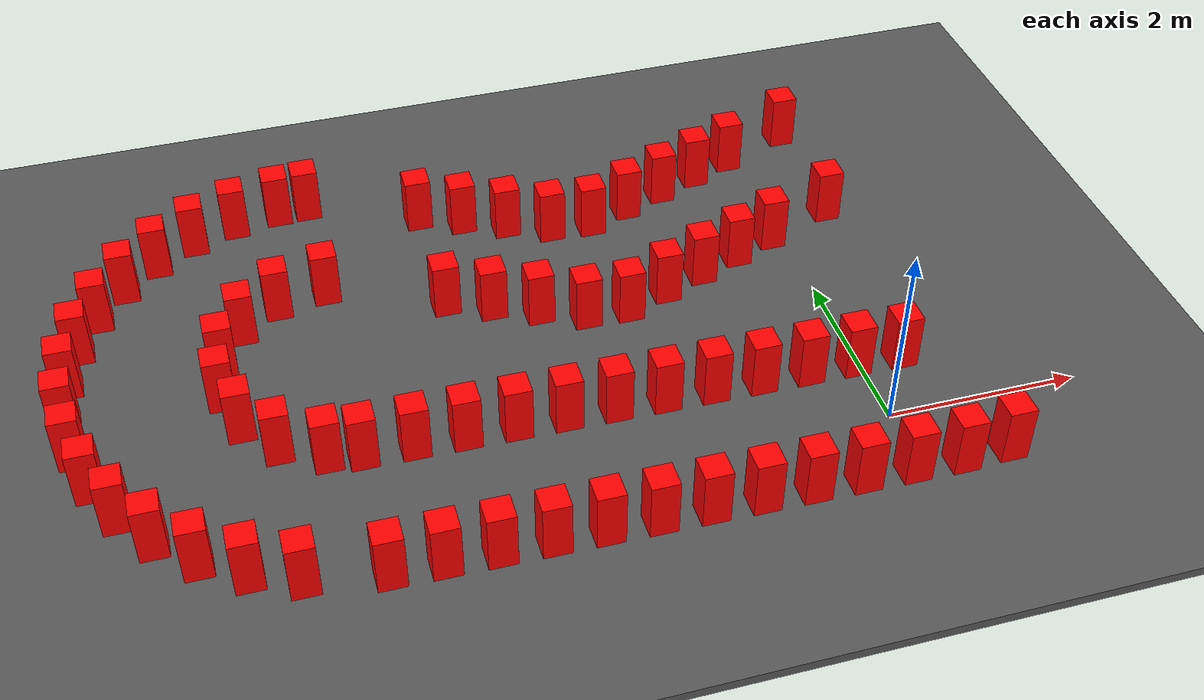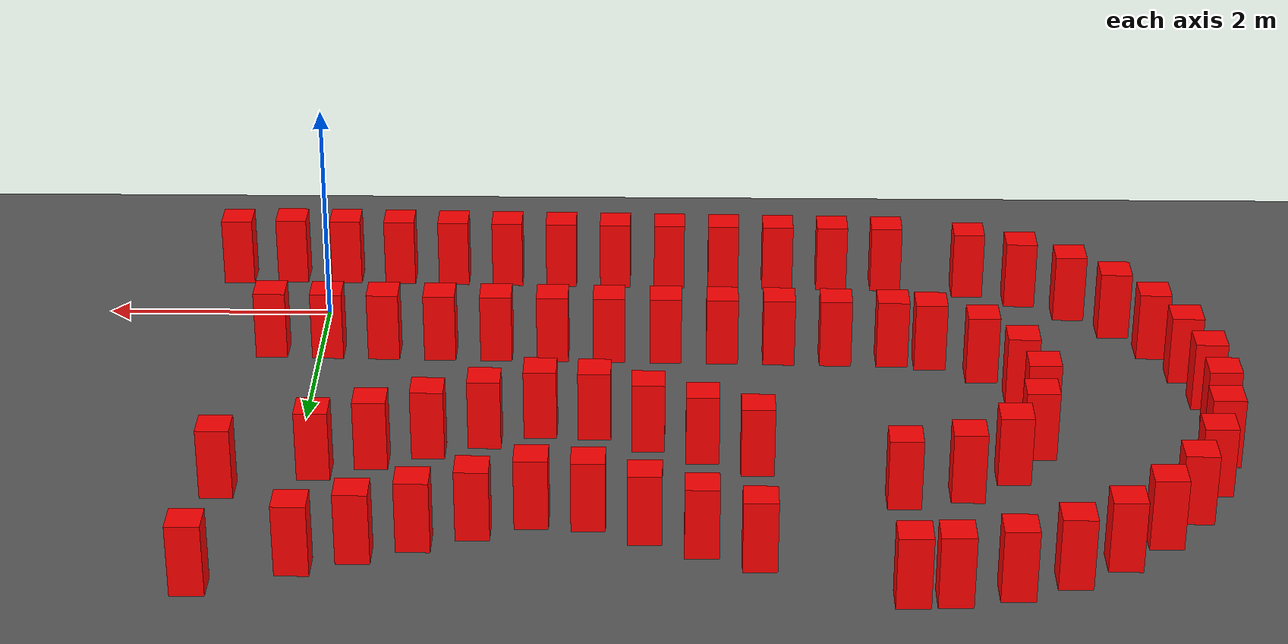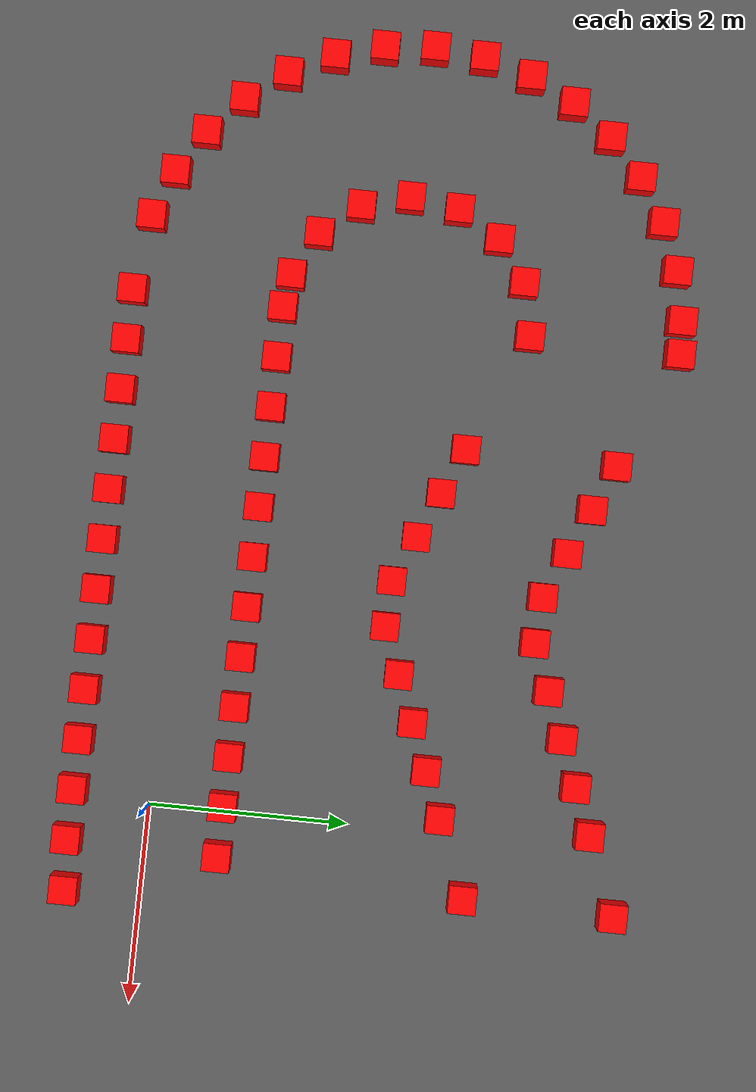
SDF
<sdf version="1.6">
 <world name="prototype">
  <model name="ground">
   <static>true</static>
   <pose>0 0 -0.05 0 0 0</pose>
   <link name="body">
    <visual name="visual">
     <geometry><box><size>200 200 0.1</size></box></geometry>
     <material><ambient>.35 .35 .35 1</ambient><diffuse>.35 .35 .35 1</diffuse></material>
    </visual>
    <collision name="collision"><geometry><box><size>200 200 0.1</size></box></geometry></collision>
   </link>
  </model>
  <model name="cone_proxy_c0">
   <static>true</static>
   <pose>-5.1255 -0.6646 0.315 0 0 0</pose>
   <link name="body">
    <visual name="visual">
     <geometry><box><size>.28 .28 .63</size></box></geometry>
     <material><ambient>1 0 0 1</ambient><diffuse>1 0 0 1</diffuse></material>
    </visual>
    <collision name="collision"><geometry><box><size>.28 .28 .63</size></box></geometry></collision>
   </link>
  </model>
  <model name="cone_proxy_c1">
   <static>true</static>
   <pose>-4.6230 -0.6737 0.315 0 0 0</pose>
   <link name="body">
    <visual name="visual">
     <geometry><box><size>.28 .28 .63</size></box></geometry>
     <material><ambient>1 0 0 1</ambient><diffuse>1 0 0 1</diffuse></material>
    </visual>
    <collision name="collision"><geometry><box><size>.28 .28 .63</size></box></geometry></collision>
   </link>
  </model>
  <model name="cone_proxy_c2">
   <static>true</static>
   <pose>-4.1205 -0.6827 0.315 0 0 0</pose>
   <link name="body">
    <visual name="visual">
     <geometry><box><size>.28 .28 .63</size></box></geometry>
     <material><ambient>1 0 0 1</ambient><diffuse>1 0 0 1</diffuse></material>
    </visual>
    <collision name="collision"><geometry><box><size>.28 .28 .63</size></box></geometry></collision>
   </link>
  </model>
  <model name="cone_proxy_c3">
   <static>true</static>
   <pose>-3.6181 -0.6918 0.315 0 0 0</pose>
   <link name="body">
    <visual name="visual">
     <geometry><box><size>.28 .28 .63</size></box></geometry>
     <material><ambient>1 0 0 1</ambient><diffuse>1 0 0 1</diffuse></material>
    </visual>
    <collision name="collision"><geometry><box><size>.28 .28 .63</size></box></geometry></collision>
   </link>
  </model>
  <model name="cone_proxy_c4">
   <static>true</static>
   <pose>-3.1156 -0.7009 0.315 0 0 0</pose>
   <link name="body">
    <visual name="visual">
     <geometry><box><size>.28 .28 .63</size></box></geometry>
     <material><ambient>1 0 0 1</ambient><diffuse>1 0 0 1</diffuse></material>
    </visual>
    <collision name="collision"><geometry><box><size>.28 .28 .63</size></box></geometry></collision>
   </link>
  </model>
  <model name="cone_proxy_c5">
   <static>true</static>
   <pose>-2.6132 -0.7100 0.315 0 0 0</pose>
   <link name="body">
    <visual name="visual">
     <geometry><box><size>.28 .28 .63</size></box></geometry>
     <material><ambient>1 0 0 1</ambient><diffuse>1 0 0 1</diffuse></material>
    </visual>
    <collision name="collision"><geometry><box><size>.28 .28 .63</size></box></geometry></collision>
   </link>
  </model>
  <model name="cone_proxy_c6">
   <static>true</static>
   <pose>-2.1108 -0.7191 0.315 0 0 0</pose>
   <link name="body">
    <visual name="visual">
     <geometry><box><size>.28 .28 .63</size></box></geometry>
     <material><ambient>1 0 0 1</ambient><diffuse>1 0 0 1</diffuse></material>
    </visual>
    <collision name="collision"><geometry><box><size>.28 .28 .63</size></box></geometry></collision>
   </link>
  </model>
  <model name="cone_proxy_c7">
   <static>true</static>
   <pose>-1.6083 -0.7282 0.315 0 0 0</pose>
   <link name="body">
    <visual name="visual">
     <geometry><box><size>.28 .28 .63</size></box></geometry>
     <material><ambient>1 0 0 1</ambient><diffuse>1 0 0 1</diffuse></material>
    </visual>
    <collision name="collision"><geometry><box><size>.28 .28 .63</size></box></geometry></collision>
   </link>
  </model>
  <model name="cone_proxy_c8">
   <static>true</static>
   <pose>-1.1058 -0.7373 0.315 0 0 0</pose>
   <link name="body">
    <visual name="visual">
     <geometry><box><size>.28 .28 .63</size></box></geometry>
     <material><ambient>1 0 0 1</ambient><diffuse>1 0 0 1</diffuse></material>
    </visual>
    <collision name="collision"><geometry><box><size>.28 .28 .63</size></box></geometry></collision>
   </link>
  </model>
  <model name="cone_proxy_c9">
   <static>true</static>
   <pose>-0.6034 -0.7464 0.315 0 0 0</pose>
   <link name="body">
    <visual name="visual">
     <geometry><box><size>.28 .28 .63</size></box></geometry>
     <material><ambient>1 0 0 1</ambient><diffuse>1 0 0 1</diffuse></material>
    </visual>
    <collision name="collision"><geometry><box><size>.28 .28 .63</size></box></geometry></collision>
   </link>
  </model>
  <model name="cone_proxy_c10">
   <static>true</static>
   <pose>-0.1010 -0.7555 0.315 0 0 0</pose>
   <link name="body">
    <visual name="visual">
     <geometry><box><size>.28 .28 .63</size></box></geometry>
     <material><ambient>1 0 0 1</ambient><diffuse>1 0 0 1</diffuse></material>
    </visual>
    <collision name="collision"><geometry><box><size>.28 .28 .63</size></box></geometry></collision>
   </link>
  </model>
  <model name="cone_proxy_c11">
   <static>true</static>
   <pose>0.4015 -0.7646 0.315 0 0 0</pose>
   <link name="body">
    <visual name="visual">
     <geometry><box><size>.28 .28 .63</size></box></geometry>
     <material><ambient>1 0 0 1</ambient><diffuse>1 0 0 1</diffuse></material>
    </visual>
    <collision name="collision"><geometry><box><size>.28 .28 .63</size></box></geometry></collision>
   </link>
  </model>
  <model name="cone_proxy_c12">
   <static>true</static>
   <pose>0.9026 -0.7414 0.315 0 0 0</pose>
   <link name="body">
    <visual name="visual">
     <geometry><box><size>.28 .28 .63</size></box></geometry>
     <material><ambient>1 0 0 1</ambient><diffuse>1 0 0 1</diffuse></material>
    </visual>
    <collision name="collision"><geometry><box><size>.28 .28 .63</size></box></geometry></collision>
   </link>
  </model>
  <model name="cone_proxy_c52">
   <static>true</static>
   <pose>0.6265 4.7287 0.315 0 0 0</pose>
   <link name="body">
    <visual name="visual">
     <geometry><box><size>.28 .28 .63</size></box></geometry>
     <material><ambient>1 0 0 1</ambient><diffuse>1 0 0 1</diffuse></material>
    </visual>
    <collision name="collision"><geometry><box><size>.28 .28 .63</size></box></geometry></collision>
   </link>
  </model>
  <model name="cone_proxy_c53">
   <static>true</static>
   <pose>-5.0260 4.8309 0.315 0 0 0</pose>
   <link name="body">
    <visual name="visual">
     <geometry><box><size>.28 .28 .63</size></box></geometry>
     <material><ambient>1 0 0 1</ambient><diffuse>1 0 0 1</diffuse></material>
    </visual>
    <collision name="collision"><geometry><box><size>.28 .28 .63</size></box></geometry></collision>
   </link>
  </model>
  <model name="cone_proxy_c54">
   <static>true</static>
   <pose>-5.3569 4.8156 0.315 0 0 0</pose>
   <link name="body">
    <visual name="visual">
     <geometry><box><size>.28 .28 .63</size></box></geometry>
     <material><ambient>1 0 0 1</ambient><diffuse>1 0 0 1</diffuse></material>
    </visual>
    <collision name="collision"><geometry><box><size>.28 .28 .63</size></box></geometry></collision>
   </link>
  </model>
  <model name="cone_proxy_c55">
   <static>true</static>
   <pose>-5.8491 4.7188 0.315 0 0 0</pose>
   <link name="body">
    <visual name="visual">
     <geometry><box><size>.28 .28 .63</size></box></geometry>
     <material><ambient>1 0 0 1</ambient><diffuse>1 0 0 1</diffuse></material>
    </visual>
    <collision name="collision"><geometry><box><size>.28 .28 .63</size></box></geometry></collision>
   </link>
  </model>
  <model name="cone_proxy_c56">
   <static>true</static>
   <pose>-6.3161 4.5353 0.315 0 0 0</pose>
   <link name="body">
    <visual name="visual">
     <geometry><box><size>.28 .28 .63</size></box></geometry>
     <material><ambient>1 0 0 1</ambient><diffuse>1 0 0 1</diffuse></material>
    </visual>
    <collision name="collision"><geometry><box><size>.28 .28 .63</size></box></geometry></collision>
   </link>
  </model>
  <model name="cone_proxy_c57">
   <static>true</static>
   <pose>-6.7405 4.2677 0.315 0 0 0</pose>
   <link name="body">
    <visual name="visual">
     <geometry><box><size>.28 .28 .63</size></box></geometry>
     <material><ambient>1 0 0 1</ambient><diffuse>1 0 0 1</diffuse></material>
    </visual>
    <collision name="collision"><geometry><box><size>.28 .28 .63</size></box></geometry></collision>
   </link>
  </model>
  <model name="cone_proxy_c58">
   <static>true</static>
   <pose>-7.1105 3.9288 0.315 0 0 0</pose>
   <link name="body">
    <visual name="visual">
     <geometry><box><size>.28 .28 .63</size></box></geometry>
     <material><ambient>1 0 0 1</ambient><diffuse>1 0 0 1</diffuse></material>
    </visual>
    <collision name="collision"><geometry><box><size>.28 .28 .63</size></box></geometry></collision>
   </link>
  </model>
  <model name="cone_proxy_c59">
   <static>true</static>
   <pose>-7.4123 3.5280 0.315 0 0 0</pose>
   <link name="body">
    <visual name="visual">
     <geometry><box><size>.28 .28 .63</size></box></geometry>
     <material><ambient>1 0 0 1</ambient><diffuse>1 0 0 1</diffuse></material>
    </visual>
    <collision name="collision"><geometry><box><size>.28 .28 .63</size></box></geometry></collision>
   </link>
  </model>
  <model name="cone_proxy_c60">
   <static>true</static>
   <pose>-7.6355 3.0788 0.315 0 0 0</pose>
   <link name="body">
    <visual name="visual">
     <geometry><box><size>.28 .28 .63</size></box></geometry>
     <material><ambient>1 0 0 1</ambient><diffuse>1 0 0 1</diffuse></material>
    </visual>
    <collision name="collision"><geometry><box><size>.28 .28 .63</size></box></geometry></collision>
   </link>
  </model>
  <model name="cone_proxy_c61">
   <static>true</static>
   <pose>-7.7751 2.5968 0.315 0 0 0</pose>
   <link name="body">
    <visual name="visual">
     <geometry><box><size>.28 .28 .63</size></box></geometry>
     <material><ambient>1 0 0 1</ambient><diffuse>1 0 0 1</diffuse></material>
    </visual>
    <collision name="collision"><geometry><box><size>.28 .28 .63</size></box></geometry></collision>
   </link>
  </model>
  <model name="cone_proxy_c62">
   <static>true</static>
   <pose>-7.8224 2.0973 0.315 0 0 0</pose>
   <link name="body">
    <visual name="visual">
     <geometry><box><size>.28 .28 .63</size></box></geometry>
     <material><ambient>1 0 0 1</ambient><diffuse>1 0 0 1</diffuse></material>
    </visual>
    <collision name="collision"><geometry><box><size>.28 .28 .63</size></box></geometry></collision>
   </link>
  </model>
  <model name="cone_proxy_c63">
   <static>true</static>
   <pose>-7.7792 1.5975 0.315 0 0 0</pose>
   <link name="body">
    <visual name="visual">
     <geometry><box><size>.28 .28 .63</size></box></geometry>
     <material><ambient>1 0 0 1</ambient><diffuse>1 0 0 1</diffuse></material>
    </visual>
    <collision name="collision"><geometry><box><size>.28 .28 .63</size></box></geometry></collision>
   </link>
  </model>
  <model name="cone_proxy_c64">
   <static>true</static>
   <pose>-7.6467 1.1135 0.315 0 0 0</pose>
   <link name="body">
    <visual name="visual">
     <geometry><box><size>.28 .28 .63</size></box></geometry>
     <material><ambient>1 0 0 1</ambient><diffuse>1 0 0 1</diffuse></material>
    </visual>
    <collision name="collision"><geometry><box><size>.28 .28 .63</size></box></geometry></collision>
   </link>
  </model>
  <model name="cone_proxy_c65">
   <static>true</static>
   <pose>-7.4264 0.6627 0.315 0 0 0</pose>
   <link name="body">
    <visual name="visual">
     <geometry><box><size>.28 .28 .63</size></box></geometry>
     <material><ambient>1 0 0 1</ambient><diffuse>1 0 0 1</diffuse></material>
    </visual>
    <collision name="collision"><geometry><box><size>.28 .28 .63</size></box></geometry></collision>
   </link>
  </model>
  <model name="cone_proxy_c66">
   <static>true</static>
   <pose>-7.1294 0.2583 0.315 0 0 0</pose>
   <link name="body">
    <visual name="visual">
     <geometry><box><size>.28 .28 .63</size></box></geometry>
     <material><ambient>1 0 0 1</ambient><diffuse>1 0 0 1</diffuse></material>
    </visual>
    <collision name="collision"><geometry><box><size>.28 .28 .63</size></box></geometry></collision>
   </link>
  </model>
  <model name="cone_proxy_c67">
   <static>true</static>
   <pose>-6.7631 -0.0845 0.315 0 0 0</pose>
   <link name="body">
    <visual name="visual">
     <geometry><box><size>.28 .28 .63</size></box></geometry>
     <material><ambient>1 0 0 1</ambient><diffuse>1 0 0 1</diffuse></material>
    </visual>
    <collision name="collision"><geometry><box><size>.28 .28 .63</size></box></geometry></collision>
   </link>
  </model>
  <model name="cone_proxy_c68">
   <static>true</static>
   <pose>-6.3405 -0.3548 0.315 0 0 0</pose>
   <link name="body">
    <visual name="visual">
     <geometry><box><size>.28 .28 .63</size></box></geometry>
     <material><ambient>1 0 0 1</ambient><diffuse>1 0 0 1</diffuse></material>
    </visual>
    <collision name="collision"><geometry><box><size>.28 .28 .63</size></box></geometry></collision>
   </link>
  </model>
  <model name="cone_proxy_c69">
   <static>true</static>
   <pose>-5.8764 -0.5457 0.315 0 0 0</pose>
   <link name="body">
    <visual name="visual">
     <geometry><box><size>.28 .28 .63</size></box></geometry>
     <material><ambient>1 0 0 1</ambient><diffuse>1 0 0 1</diffuse></material>
    </visual>
    <collision name="collision"><geometry><box><size>.28 .28 .63</size></box></geometry></collision>
   </link>
  </model>
  <model name="cone_proxy_c70">
   <static>true</static>
   <pose>-5.0982 0.8428 0.315 0 0 0</pose>
   <link name="body">
    <visual name="visual">
     <geometry><box><size>.28 .28 .63</size></box></geometry>
     <material><ambient>1 0 0 1</ambient><diffuse>1 0 0 1</diffuse></material>
    </visual>
    <collision name="collision"><geometry><box><size>.28 .28 .63</size></box></geometry></collision>
   </link>
  </model>
  <model name="cone_proxy_c71">
   <static>true</static>
   <pose>-4.5957 0.8337 0.315 0 0 0</pose>
   <link name="body">
    <visual name="visual">
     <geometry><box><size>.28 .28 .63</size></box></geometry>
     <material><ambient>1 0 0 1</ambient><diffuse>1 0 0 1</diffuse></material>
    </visual>
    <collision name="collision"><geometry><box><size>.28 .28 .63</size></box></geometry></collision>
   </link>
  </model>
  <model name="cone_proxy_c72">
   <static>true</static>
   <pose>-4.0933 0.8246 0.315 0 0 0</pose>
   <link name="body">
    <visual name="visual">
     <geometry><box><size>.28 .28 .63</size></box></geometry>
     <material><ambient>1 0 0 1</ambient><diffuse>1 0 0 1</diffuse></material>
    </visual>
    <collision name="collision"><geometry><box><size>.28 .28 .63</size></box></geometry></collision>
   </link>
  </model>
  <model name="cone_proxy_c73">
   <static>true</static>
   <pose>-3.5908 0.8155 0.315 0 0 0</pose>
   <link name="body">
    <visual name="visual">
     <geometry><box><size>.28 .28 .63</size></box></geometry>
     <material><ambient>1 0 0 1</ambient><diffuse>1 0 0 1</diffuse></material>
    </visual>
    <collision name="collision"><geometry><box><size>.28 .28 .63</size></box></geometry></collision>
   </link>
  </model>
  <model name="cone_proxy_c74">
   <static>true</static>
   <pose>-3.0883 0.8064 0.315 0 0 0</pose>
   <link name="body">
    <visual name="visual">
     <geometry><box><size>.28 .28 .63</size></box></geometry>
     <material><ambient>1 0 0 1</ambient><diffuse>1 0 0 1</diffuse></material>
    </visual>
    <collision name="collision"><geometry><box><size>.28 .28 .63</size></box></geometry></collision>
   </link>
  </model>
  <model name="cone_proxy_c75">
   <static>true</static>
   <pose>-2.5859 0.7973 0.315 0 0 0</pose>
   <link name="body">
    <visual name="visual">
     <geometry><box><size>.28 .28 .63</size></box></geometry>
     <material><ambient>1 0 0 1</ambient><diffuse>1 0 0 1</diffuse></material>
    </visual>
    <collision name="collision"><geometry><box><size>.28 .28 .63</size></box></geometry></collision>
   </link>
  </model>
  <model name="cone_proxy_c76">
   <static>true</static>
   <pose>-2.0835 0.7882 0.315 0 0 0</pose>
   <link name="body">
    <visual name="visual">
     <geometry><box><size>.28 .28 .63</size></box></geometry>
     <material><ambient>1 0 0 1</ambient><diffuse>1 0 0 1</diffuse></material>
    </visual>
    <collision name="collision"><geometry><box><size>.28 .28 .63</size></box></geometry></collision>
   </link>
  </model>
  <model name="cone_proxy_c77">
   <static>true</static>
   <pose>-1.5811 0.7792 0.315 0 0 0</pose>
   <link name="body">
    <visual name="visual">
     <geometry><box><size>.28 .28 .63</size></box></geometry>
     <material><ambient>1 0 0 1</ambient><diffuse>1 0 0 1</diffuse></material>
    </visual>
    <collision name="collision"><geometry><box><size>.28 .28 .63</size></box></geometry></collision>
   </link>
  </model>
  <model name="cone_proxy_c78">
   <static>true</static>
   <pose>-1.0786 0.7701 0.315 0 0 0</pose>
   <link name="body">
    <visual name="visual">
     <geometry><box><size>.28 .28 .63</size></box></geometry>
     <material><ambient>1 0 0 1</ambient><diffuse>1 0 0 1</diffuse></material>
    </visual>
    <collision name="collision"><geometry><box><size>.28 .28 .63</size></box></geometry></collision>
   </link>
  </model>
  <model name="cone_proxy_c79">
   <static>true</static>
   <pose>-0.5761 0.7610 0.315 0 0 0</pose>
   <link name="body">
    <visual name="visual">
     <geometry><box><size>.28 .28 .63</size></box></geometry>
     <material><ambient>1 0 0 1</ambient><diffuse>1 0 0 1</diffuse></material>
    </visual>
    <collision name="collision"><geometry><box><size>.28 .28 .63</size></box></geometry></collision>
   </link>
  </model>
  <model name="cone_proxy_c80">
   <static>true</static>
   <pose>-0.0737 0.7519 0.315 0 0 0</pose>
   <link name="body">
    <visual name="visual">
     <geometry><box><size>.28 .28 .63</size></box></geometry>
     <material><ambient>1 0 0 1</ambient><diffuse>1 0 0 1</diffuse></material>
    </visual>
    <collision name="collision"><geometry><box><size>.28 .28 .63</size></box></geometry></collision>
   </link>
  </model>
  <model name="cone_proxy_c81">
   <static>true</static>
   <pose>0.4288 0.7428 0.315 0 0 0</pose>
   <link name="body">
    <visual name="visual">
     <geometry><box><size>.28 .28 .63</size></box></geometry>
     <material><ambient>1 0 0 1</ambient><diffuse>1 0 0 1</diffuse></material>
    </visual>
    <collision name="collision"><geometry><box><size>.28 .28 .63</size></box></geometry></collision>
   </link>
  </model>
  <model name="cone_proxy_c113">
   <static>true</static>
   <pose>0.5993 3.2213 0.315 0 0 0</pose>
   <link name="body">
    <visual name="visual">
     <geometry><box><size>.28 .28 .63</size></box></geometry>
     <material><ambient>1 0 0 1</ambient><diffuse>1 0 0 1</diffuse></material>
    </visual>
    <collision name="collision"><geometry><box><size>.28 .28 .63</size></box></geometry></collision>
   </link>
  </model>
  <model name="cone_proxy_c114">
   <static>true</static>
   <pose>-5.0533 3.3236 0.315 0 0 0</pose>
   <link name="body">
    <visual name="visual">
     <geometry><box><size>.28 .28 .63</size></box></geometry>
     <material><ambient>1 0 0 1</ambient><diffuse>1 0 0 1</diffuse></material>
    </visual>
    <collision name="collision"><geometry><box><size>.28 .28 .63</size></box></geometry></collision>
   </link>
  </model>
  <model name="cone_proxy_c115">
   <static>true</static>
   <pose>-5.5819 3.2152 0.315 0 0 0</pose>
   <link name="body">
    <visual name="visual">
     <geometry><box><size>.28 .28 .63</size></box></geometry>
     <material><ambient>1 0 0 1</ambient><diffuse>1 0 0 1</diffuse></material>
    </visual>
    <collision name="collision"><geometry><box><size>.28 .28 .63</size></box></geometry></collision>
   </link>
  </model>
  <model name="cone_proxy_c116">
   <static>true</static>
   <pose>-5.9873 2.9243 0.315 0 0 0</pose>
   <link name="body">
    <visual name="visual">
     <geometry><box><size>.28 .28 .63</size></box></geometry>
     <material><ambient>1 0 0 1</ambient><diffuse>1 0 0 1</diffuse></material>
    </visual>
    <collision name="collision"><geometry><box><size>.28 .28 .63</size></box></geometry></collision>
   </link>
  </model>
  <model name="cone_proxy_c117">
   <static>true</static>
   <pose>-6.2450 2.4969 0.315 0 0 0</pose>
   <link name="body">
    <visual name="visual">
     <geometry><box><size>.28 .28 .63</size></box></geometry>
     <material><ambient>1 0 0 1</ambient><diffuse>1 0 0 1</diffuse></material>
    </visual>
    <collision name="collision"><geometry><box><size>.28 .28 .63</size></box></geometry></collision>
   </link>
  </model>
  <model name="cone_proxy_c118">
   <static>true</static>
   <pose>-6.3131 2.0026 0.315 0 0 0</pose>
   <link name="body">
    <visual name="visual">
     <geometry><box><size>.28 .28 .63</size></box></geometry>
     <material><ambient>1 0 0 1</ambient><diffuse>1 0 0 1</diffuse></material>
    </visual>
    <collision name="collision"><geometry><box><size>.28 .28 .63</size></box></geometry></collision>
   </link>
  </model>
  <model name="cone_proxy_c119">
   <static>true</static>
   <pose>-6.1810 1.5215 0.315 0 0 0</pose>
   <link name="body">
    <visual name="visual">
     <geometry><box><size>.28 .28 .63</size></box></geometry>
     <material><ambient>1 0 0 1</ambient><diffuse>1 0 0 1</diffuse></material>
    </visual>
    <collision name="collision"><geometry><box><size>.28 .28 .63</size></box></geometry></collision>
   </link>
  </model>
  <model name="cone_proxy_c120">
   <static>true</static>
   <pose>-5.8702 1.1312 0.315 0 0 0</pose>
   <link name="body">
    <visual name="visual">
     <geometry><box><size>.28 .28 .63</size></box></geometry>
     <material><ambient>1 0 0 1</ambient><diffuse>1 0 0 1</diffuse></material>
    </visual>
    <collision name="collision"><geometry><box><size>.28 .28 .63</size></box></geometry></collision>
   </link>
  </model>
  <model name="cone_proxy_c121">
   <static>true</static>
   <pose>-5.4308 0.8947 0.315 0 0 0</pose>
   <link name="body">
    <visual name="visual">
     <geometry><box><size>.28 .28 .63</size></box></geometry>
     <material><ambient>1 0 0 1</ambient><diffuse>1 0 0 1</diffuse></material>
    </visual>
    <collision name="collision"><geometry><box><size>.28 .28 .63</size></box></geometry></collision>
   </link>
  </model>
  <model name="cone_proxy_c122">
   <static>true</static>
   <pose>-0.1560 4.4191 0.315 0 0 0</pose>
   <link name="body">
    <visual name="visual">
     <geometry><box><size>.28 .28 .63</size></box></geometry>
     <material><ambient>1 0 0 1</ambient><diffuse>1 0 0 1</diffuse></material>
    </visual>
    <collision name="collision"><geometry><box><size>.28 .28 .63</size></box></geometry></collision>
   </link>
  </model>
  <model name="cone_proxy_c123">
   <static>true</static>
   <pose>-0.6209 4.2352 0.315 0 0 0</pose>
   <link name="body">
    <visual name="visual">
     <geometry><box><size>.28 .28 .63</size></box></geometry>
     <material><ambient>1 0 0 1</ambient><diffuse>1 0 0 1</diffuse></material>
    </visual>
    <collision name="collision"><geometry><box><size>.28 .28 .63</size></box></geometry></collision>
   </link>
  </model>
  <model name="cone_proxy_c124">
   <static>true</static>
   <pose>-1.0858 4.0512 0.315 0 0 0</pose>
   <link name="body">
    <visual name="visual">
     <geometry><box><size>.28 .28 .63</size></box></geometry>
     <material><ambient>1 0 0 1</ambient><diffuse>1 0 0 1</diffuse></material>
    </visual>
    <collision name="collision"><geometry><box><size>.28 .28 .63</size></box></geometry></collision>
   </link>
  </model>
  <model name="cone_proxy_c125">
   <static>true</static>
   <pose>-1.5508 3.8674 0.315 0 0 0</pose>
   <link name="body">
    <visual name="visual">
     <geometry><box><size>.28 .28 .63</size></box></geometry>
     <material><ambient>1 0 0 1</ambient><diffuse>1 0 0 1</diffuse></material>
    </visual>
    <collision name="collision"><geometry><box><size>.28 .28 .63</size></box></geometry></collision>
   </link>
  </model>
  <model name="cone_proxy_c126">
   <static>true</static>
   <pose>-2.0158 3.6834 0.315 0 0 0</pose>
   <link name="body">
    <visual name="visual">
     <geometry><box><size>.28 .28 .63</size></box></geometry>
     <material><ambient>1 0 0 1</ambient><diffuse>1 0 0 1</diffuse></material>
    </visual>
    <collision name="collision"><geometry><box><size>.28 .28 .63</size></box></geometry></collision>
   </link>
  </model>
  <model name="cone_proxy_c127">
   <static>true</static>
   <pose>-2.4768 3.7143 0.315 0 0 0</pose>
   <link name="body">
    <visual name="visual">
     <geometry><box><size>.28 .28 .63</size></box></geometry>
     <material><ambient>1 0 0 1</ambient><diffuse>1 0 0 1</diffuse></material>
    </visual>
    <collision name="collision"><geometry><box><size>.28 .28 .63</size></box></geometry></collision>
   </link>
  </model>
  <model name="cone_proxy_c128">
   <static>true</static>
   <pose>-2.9348 3.9149 0.315 0 0 0</pose>
   <link name="body">
    <visual name="visual">
     <geometry><box><size>.28 .28 .63</size></box></geometry>
     <material><ambient>1 0 0 1</ambient><diffuse>1 0 0 1</diffuse></material>
    </visual>
    <collision name="collision"><geometry><box><size>.28 .28 .63</size></box></geometry></collision>
   </link>
  </model>
  <model name="cone_proxy_c129">
   <static>true</static>
   <pose>-3.3928 4.1155 0.315 0 0 0</pose>
   <link name="body">
    <visual name="visual">
     <geometry><box><size>.28 .28 .63</size></box></geometry>
     <material><ambient>1 0 0 1</ambient><diffuse>1 0 0 1</diffuse></material>
    </visual>
    <collision name="collision"><geometry><box><size>.28 .28 .63</size></box></geometry></collision>
   </link>
  </model>
  <model name="cone_proxy_c130">
   <static>true</static>
   <pose>-3.8508 4.3161 0.315 0 0 0</pose>
   <link name="body">
    <visual name="visual">
     <geometry><box><size>.28 .28 .63</size></box></geometry>
     <material><ambient>1 0 0 1</ambient><diffuse>1 0 0 1</diffuse></material>
    </visual>
    <collision name="collision"><geometry><box><size>.28 .28 .63</size></box></geometry></collision>
   </link>
  </model>
  <model name="cone_proxy_c131">
   <static>true</static>
   <pose>-0.1696 2.9172 0.315 0 0 0</pose>
   <link name="body">
    <visual name="visual">
     <geometry><box><size>.28 .28 .63</size></box></geometry>
     <material><ambient>1 0 0 1</ambient><diffuse>1 0 0 1</diffuse></material>
    </visual>
    <collision name="collision"><geometry><box><size>.28 .28 .63</size></box></geometry></collision>
   </link>
  </model>
  <model name="cone_proxy_c132">
   <static>true</static>
   <pose>-0.6345 2.7333 0.315 0 0 0</pose>
   <link name="body">
    <visual name="visual">
     <geometry><box><size>.28 .28 .63</size></box></geometry>
     <material><ambient>1 0 0 1</ambient><diffuse>1 0 0 1</diffuse></material>
    </visual>
    <collision name="collision"><geometry><box><size>.28 .28 .63</size></box></geometry></collision>
   </link>
  </model>
  <model name="cone_proxy_c133">
   <static>true</static>
   <pose>-1.0994 2.5493 0.315 0 0 0</pose>
   <link name="body">
    <visual name="visual">
     <geometry><box><size>.28 .28 .63</size></box></geometry>
     <material><ambient>1 0 0 1</ambient><diffuse>1 0 0 1</diffuse></material>
    </visual>
    <collision name="collision"><geometry><box><size>.28 .28 .63</size></box></geometry></collision>
   </link>
  </model>
  <model name="cone_proxy_c134">
   <static>true</static>
   <pose>-1.5644 2.3654 0.315 0 0 0</pose>
   <link name="body">
    <visual name="visual">
     <geometry><box><size>.28 .28 .63</size></box></geometry>
     <material><ambient>1 0 0 1</ambient><diffuse>1 0 0 1</diffuse></material>
    </visual>
    <collision name="collision"><geometry><box><size>.28 .28 .63</size></box></geometry></collision>
   </link>
  </model>
  <model name="cone_proxy_c135">
   <static>true</static>
   <pose>-2.0293 2.1815 0.315 0 0 0</pose>
   <link name="body">
    <visual name="visual">
     <geometry><box><size>.28 .28 .63</size></box></geometry>
     <material><ambient>1 0 0 1</ambient><diffuse>1 0 0 1</diffuse></material>
    </visual>
    <collision name="collision"><geometry><box><size>.28 .28 .63</size></box></geometry></collision>
   </link>
  </model>
  <model name="cone_proxy_c136">
   <static>true</static>
   <pose>-2.4906 2.2010 0.315 0 0 0</pose>
   <link name="body">
    <visual name="visual">
     <geometry><box><size>.28 .28 .63</size></box></geometry>
     <material><ambient>1 0 0 1</ambient><diffuse>1 0 0 1</diffuse></material>
    </visual>
    <collision name="collision"><geometry><box><size>.28 .28 .63</size></box></geometry></collision>
   </link>
  </model>
  <model name="cone_proxy_c137">
   <static>true</static>
   <pose>-2.9486 2.4016 0.315 0 0 0</pose>
   <link name="body">
    <visual name="visual">
     <geometry><box><size>.28 .28 .63</size></box></geometry>
     <material><ambient>1 0 0 1</ambient><diffuse>1 0 0 1</diffuse></material>
    </visual>
    <collision name="collision"><geometry><box><size>.28 .28 .63</size></box></geometry></collision>
   </link>
  </model>
  <model name="cone_proxy_c138">
   <static>true</static>
   <pose>-3.4066 2.6022 0.315 0 0 0</pose>
   <link name="body">
    <visual name="visual">
     <geometry><box><size>.28 .28 .63</size></box></geometry>
     <material><ambient>1 0 0 1</ambient><diffuse>1 0 0 1</diffuse></material>
    </visual>
    <collision name="collision"><geometry><box><size>.28 .28 .63</size></box></geometry></collision>
   </link>
  </model>
  <model name="cone_proxy_c139">
   <static>true</static>
   <pose>-3.8645 2.8029 0.315 0 0 0</pose>
   <link name="body">
    <visual name="visual">
     <geometry><box><size>.28 .28 .63</size></box></geometry>
     <material><ambient>1 0 0 1</ambient><diffuse>1 0 0 1</diffuse></material>
    </visual>
    <collision name="collision"><geometry><box><size>.28 .28 .63</size></box></geometry></collision>
   </link>
  </model>
 </world>
</sdf>
